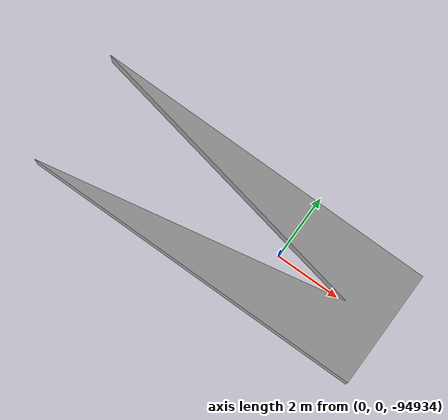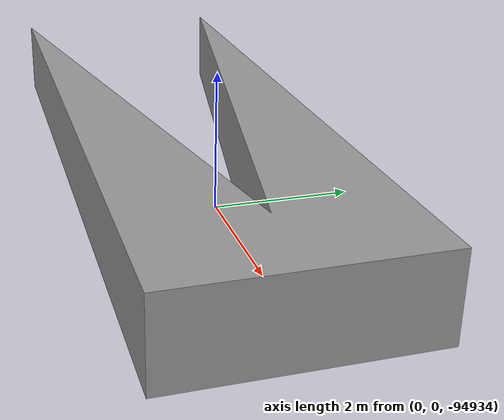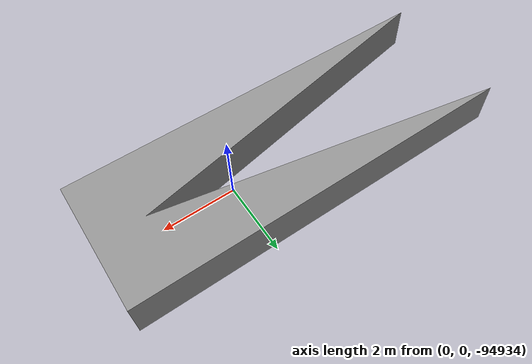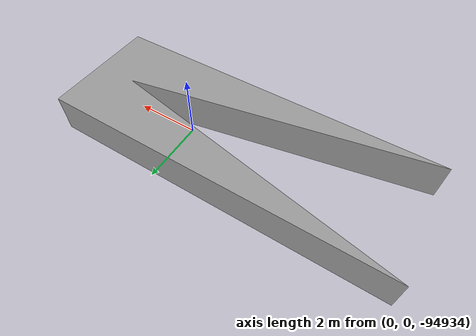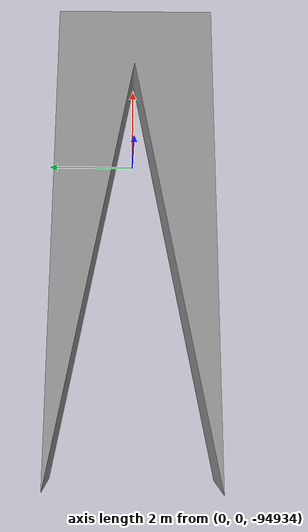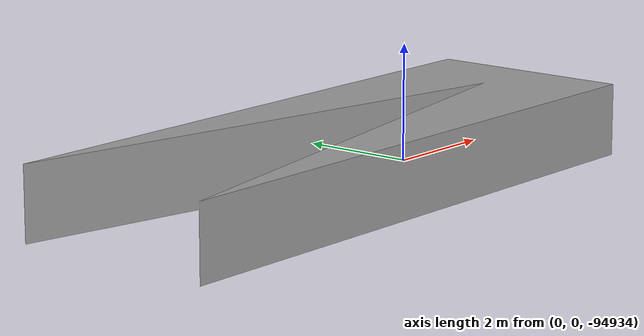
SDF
<sdf version="1.7">
 <world name="default">
  <model name="ground_plane">
   <static>1</static>
   <link name="link">
    <collision name="collision">
     <geometry><plane><normal>0 0 1</normal><size>100 100</size></plane></geometry>
     <surface>
      <contact><collide_bitmask>65535</collide_bitmask></contact>
      <friction><ode><mu>100</mu><mu2>50</mu2></ode></friction>
     </surface>
    </collision>
    <visual name="visual">
     <cast_shadows>0</cast_shadows>
     <geometry><plane><normal>0 0 1</normal><size>100 100</size></plane></geometry>
     <material>
      <script><uri>file://media/materials/scripts/gazebo.material</uri><name>Gazebo/Grey</name></script>
     </material>
    </visual>
   </link>
  </model>
  <model name="Corner">
   <link name="link_1">
    <inertial>
     <mass>1</mass>
     <inertia>
      <ixx>0.166667</ixx>
      <ixy>0</ixy>
      <ixz>0</ixz>
      <iyy>0.166667</iyy>
      <iyz>0</iyz>
      <izz>0.166667</izz>
     </inertia>
    </inertial>
    <pose>2e-06 -0 0 1.5708 -0 3.14159</pose>
    <visual name="visual">
     <geometry>
      <mesh>
       <uri>/home/leesirius/workbench_ws/src/tb3_custom_worlds/custom_models/corner_object.obj</uri>
       <scale>1 1 1</scale>
      </mesh>
     </geometry>
     <material>
      <lighting>1</lighting>
      <script><uri>file://media/materials/scripts/gazebo.material</uri><name>Gazebo/Grey</name></script>
      <shader type="pixel"/>
     </material>
    </visual>
    <collision name="collision">
     <geometry>
      <mesh>
       <uri>/home/leesirius/workbench_ws/src/tb3_custom_worlds/custom_models/corner_object.obj</uri>
       <scale>1 1 1</scale>
      </mesh>
     </geometry>
     <surface>
      <friction>
       <ode><mu>1</mu><mu2>1</mu2><fdir1>0 0 0</fdir1><slip1>0</slip1><slip2>0</slip2></ode>
       <torsional>
        <coefficient>1</coefficient>
        <patch_radius>0</patch_radius>
        <surface_radius>0</surface_radius>
        <use_patch_radius>1</use_patch_radius>
        <ode><slip>0</slip></ode>
       </torsional>
      </friction>
      <bounce><restitution_coefficient>0</restitution_coefficient><threshold>1e+06</threshold></bounce>
      <contact>
       <collide_without_contact>0</collide_without_contact>
       <collide_without_contact_bitmask>1</collide_without_contact_bitmask>
       <collide_bitmask>1</collide_bitmask>
       <ode>
        <soft_cfm>0</soft_cfm>
        <soft_erp>0.2</soft_erp>
        <kp>1e+13</kp>
        <kd>1</kd>
        <max_vel>0.01</max_vel>
        <min_depth>0</min_depth>
       </ode>
       <bullet>
        <split_impulse>1</split_impulse>
        <split_impulse_penetration_threshold>-0.01</split_impulse_penetration_threshold>
        <soft_cfm>0</soft_cfm>
        <soft_erp>0.2</soft_erp>
        <kp>1e+13</kp>
        <kd>1</kd>
       </bullet>
      </contact>
     </surface>
    </collision>
   </link>
   <static>0</static>
   <pose>2.64404 0.303332 -94934.9 0 -0 0</pose>
  </model>
 </world>
</sdf>
